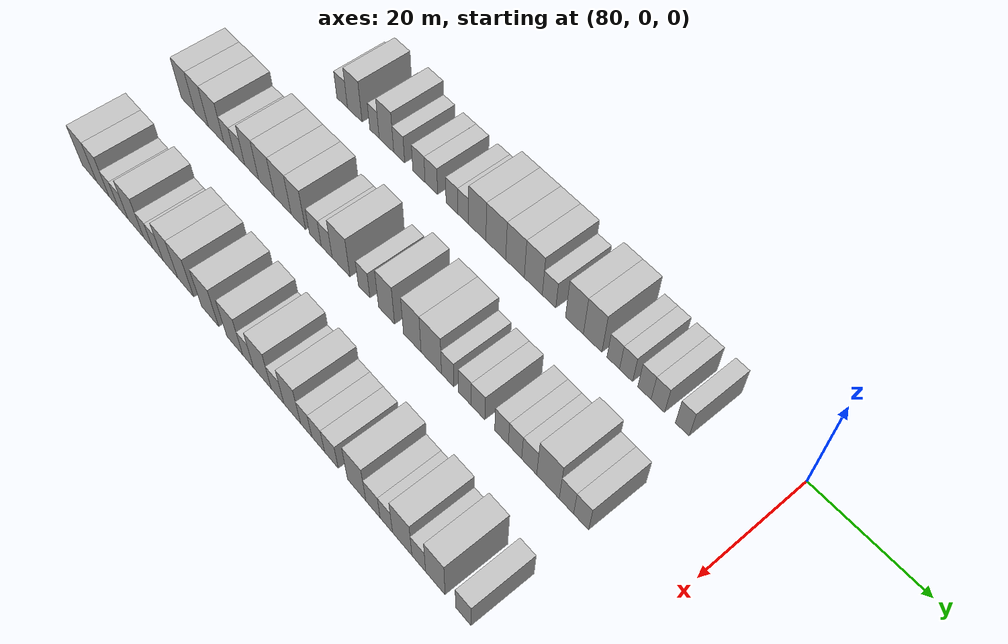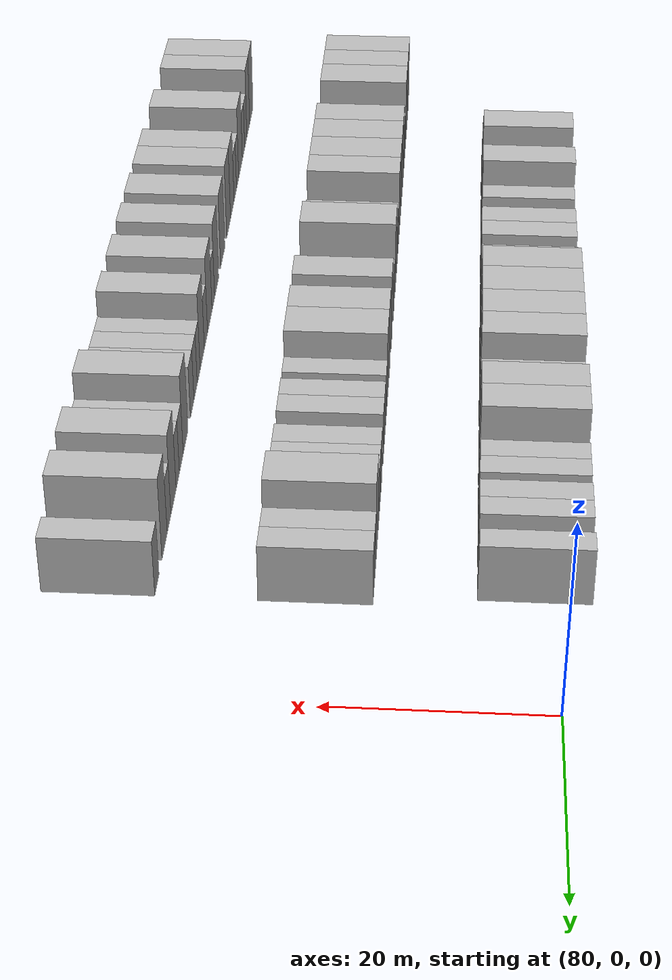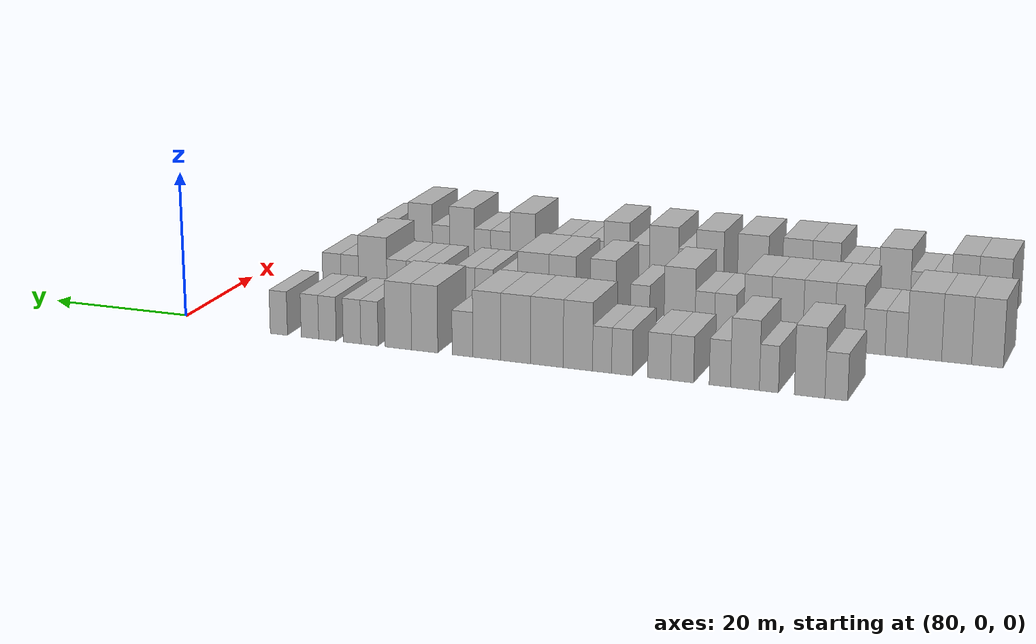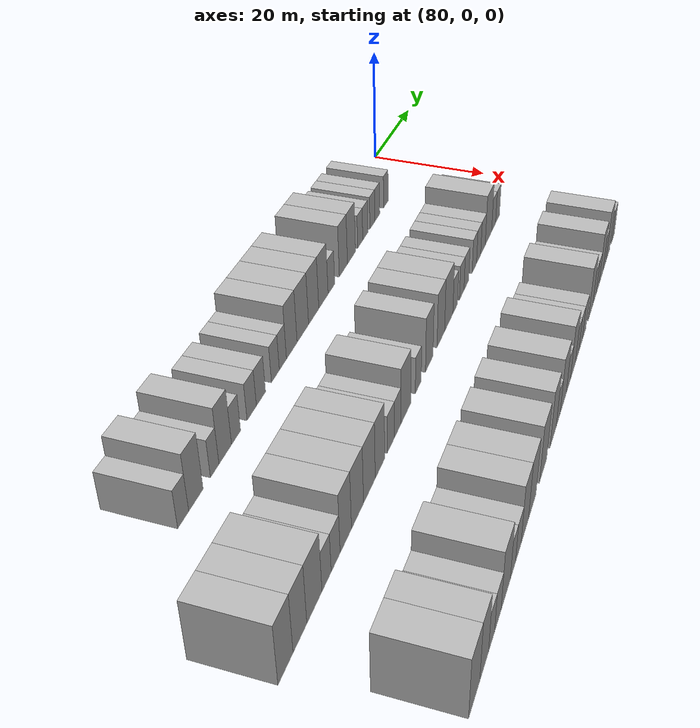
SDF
<sdf version="1.6">
 <world name="default">
  <model name="building_585">
   <static>1</static>
   <pose>82.0000 -90.4703 0 0.000000 0.000000 0.000000</pose>
   <link name="link">
    <pose>0 0 3.00 0 0 0</pose>
    <collision name="collision"><geometry><box><size>10.0000 2.8240 6.0000</size></box></geometry></collision>
    <visual name="visual">
     <cast_shadows>0</cast_shadows>
     <geometry><box><size>10.0000 2.8240 6.0000</size></box></geometry>
     <material>
      <script>
       <uri>model://HANNAS_wall/materials/scripts</uri>
       <uri>model://HANNAS_wall/materials/textures</uri>
       <name>vrc/HANNAS_wall</name>
      </script>
     </material>
    </visual>
   </link>
  </model>
  <model name="building_586">
   <static>1</static>
   <pose>82.0000 -87.1514 0 0.000000 0.000000 0.000000</pose>
   <link name="link">
    <pose>0 0 4.50 0 0 0</pose>
    <collision name="collision"><geometry><box><size>10.0000 3.8140 9.0000</size></box></geometry></collision>
    <visual name="visual">
     <cast_shadows>0</cast_shadows>
     <geometry><box><size>10.0000 3.8140 9.0000</size></box></geometry>
     <material>
      <script>
       <uri>model://HANNAS_wall/materials/scripts</uri>
       <uri>model://HANNAS_wall/materials/textures</uri>
       <name>vrc/HANNAS_wall</name>
      </script>
     </material>
    </visual>
   </link>
  </model>
  <model name="building_587">
   <static>1</static>
   <pose>82.0000 -82.0433 0 0.000000 0.000000 0.000000</pose>
   <link name="link">
    <pose>0 0 3.00 0 0 0</pose>
    <collision name="collision"><geometry><box><size>10.0000 2.4022 6.0000</size></box></geometry></collision>
    <visual name="visual">
     <cast_shadows>0</cast_shadows>
     <geometry><box><size>10.0000 2.4022 6.0000</size></box></geometry>
     <material>
      <script>
       <uri>model://HANNAS_wall/materials/scripts</uri>
       <uri>model://HANNAS_wall/materials/textures</uri>
       <name>vrc/HANNAS_wall</name>
      </script>
     </material>
    </visual>
   </link>
  </model>
  <model name="building_588">
   <static>1</static>
   <pose>82.0000 -79.0043 0 0.000000 0.000000 0.000000</pose>
   <link name="link">
    <pose>0 0 4.50 0 0 0</pose>
    <collision name="collision"><geometry><box><size>10.0000 3.6759 9.0000</size></box></geometry></collision>
    <visual name="visual">
     <cast_shadows>0</cast_shadows>
     <geometry><box><size>10.0000 3.6759 9.0000</size></box></geometry>
     <material>
      <script>
       <uri>model://HANNAS_wall/materials/scripts</uri>
       <uri>model://HANNAS_wall/materials/textures</uri>
       <name>vrc/HANNAS_wall</name>
      </script>
     </material>
    </visual>
   </link>
  </model>
  <model name="building_589">
   <static>1</static>
   <pose>82.0000 -75.8049 0 0.000000 0.000000 0.000000</pose>
   <link name="link">
    <pose>0 0 3.00 0 0 0</pose>
    <collision name="collision"><geometry><box><size>10.0000 2.7228 6.0000</size></box></geometry></collision>
    <visual name="visual">
     <cast_shadows>0</cast_shadows>
     <geometry><box><size>10.0000 2.7228 6.0000</size></box></geometry>
     <material>
      <script>
       <uri>model://HANNAS_wall/materials/scripts</uri>
       <uri>model://HANNAS_wall/materials/textures</uri>
       <name>vrc/HANNAS_wall</name>
      </script>
     </material>
    </visual>
   </link>
  </model>
  <model name="building_590">
   <static>1</static>
   <pose>82.0000 -70.9541 0 0.000000 0.000000 0.000000</pose>
   <link name="link">
    <pose>0 0 3.00 0 0 0</pose>
    <collision name="collision"><geometry><box><size>10.0000 2.9790 6.0000</size></box></geometry></collision>
    <visual name="visual">
     <cast_shadows>0</cast_shadows>
     <geometry><box><size>10.0000 2.9790 6.0000</size></box></geometry>
     <material>
      <script>
       <uri>model://HANNAS_wall/materials/scripts</uri>
       <uri>model://HANNAS_wall/materials/textures</uri>
       <name>vrc/HANNAS_wall</name>
      </script>
     </material>
    </visual>
   </link>
  </model>
  <model name="building_591">
   <static>1</static>
   <pose>82.0000 -67.9656 0 0.000000 0.000000 0.000000</pose>
   <link name="link">
    <pose>0 0 3.00 0 0 0</pose>
    <collision name="collision"><geometry><box><size>10.0000 2.9978 6.0000</size></box></geometry></collision>
    <visual name="visual">
     <cast_shadows>0</cast_shadows>
     <geometry><box><size>10.0000 2.9978 6.0000</size></box></geometry>
     <material>
      <script>
       <uri>model://HANNAS_wall/materials/scripts</uri>
       <uri>model://HANNAS_wall/materials/textures</uri>
       <name>vrc/HANNAS_wall</name>
      </script>
     </material>
    </visual>
   </link>
  </model>
  <model name="building_592">
   <static>1</static>
   <pose>82.0000 -63.0966 0 0.000000 0.000000 0.000000</pose>
   <link name="link">
    <pose>0 0 3.00 0 0 0</pose>
    <collision name="collision"><geometry><box><size>10.0000 2.7401 6.0000</size></box></geometry></collision>
    <visual name="visual">
     <cast_shadows>0</cast_shadows>
     <geometry><box><size>10.0000 2.7401 6.0000</size></box></geometry>
     <material>
      <script>
       <uri>model://HANNAS_wall/materials/scripts</uri>
       <uri>model://HANNAS_wall/materials/textures</uri>
       <name>vrc/HANNAS_wall</name>
      </script>
     </material>
    </visual>
   </link>
  </model>
  <model name="building_593">
   <static>1</static>
   <pose>82.0000 -60.4638 0 0.000000 0.000000 0.000000</pose>
   <link name="link">
    <pose>0 0 3.00 0 0 0</pose>
    <collision name="collision"><geometry><box><size>10.0000 2.5255 6.0000</size></box></geometry></collision>
    <visual name="visual">
     <cast_shadows>0</cast_shadows>
     <geometry><box><size>10.0000 2.5255 6.0000</size></box></geometry>
     <material>
      <script>
       <uri>model://HANNAS_wall/materials/scripts</uri>
       <uri>model://HANNAS_wall/materials/textures</uri>
       <name>vrc/HANNAS_wall</name>
      </script>
     </material>
    </visual>
   </link>
  </model>
  <model name="building_594">
   <static>1</static>
   <pose>82.0000 -57.2466 0 0.000000 0.000000 0.000000</pose>
   <link name="link">
    <pose>0 0 4.50 0 0 0</pose>
    <collision name="collision"><geometry><box><size>10.0000 3.9089 9.0000</size></box></geometry></collision>
    <visual name="visual">
     <cast_shadows>0</cast_shadows>
     <geometry><box><size>10.0000 3.9089 9.0000</size></box></geometry>
     <material>
      <script>
       <uri>model://HANNAS_wall/materials/scripts</uri>
       <uri>model://HANNAS_wall/materials/textures</uri>
       <name>vrc/HANNAS_wall</name>
      </script>
     </material>
    </visual>
   </link>
  </model>
  <model name="building_595">
   <static>1</static>
   <pose>82.0000 -53.0863 0 0.000000 0.000000 0.000000</pose>
   <link name="link">
    <pose>0 0 4.50 0 0 0</pose>
    <collision name="collision"><geometry><box><size>10.0000 4.4118 9.0000</size></box></geometry></collision>
    <visual name="visual">
     <cast_shadows>0</cast_shadows>
     <geometry><box><size>10.0000 4.4118 9.0000</size></box></geometry>
     <material>
      <script>
       <uri>model://HANNAS_wall/materials/scripts</uri>
       <uri>model://HANNAS_wall/materials/textures</uri>
       <name>vrc/HANNAS_wall</name>
      </script>
     </material>
    </visual>
   </link>
  </model>
  <model name="building_596">
   <static>1</static>
   <pose>82.0000 -48.8482 0 0.000000 0.000000 0.000000</pose>
   <link name="link">
    <pose>0 0 4.50 0 0 0</pose>
    <collision name="collision"><geometry><box><size>10.0000 4.0643 9.0000</size></box></geometry></collision>
    <visual name="visual">
     <cast_shadows>0</cast_shadows>
     <geometry><box><size>10.0000 4.0643 9.0000</size></box></geometry>
     <material>
      <script>
       <uri>model://HANNAS_wall/materials/scripts</uri>
       <uri>model://HANNAS_wall/materials/textures</uri>
       <name>vrc/HANNAS_wall</name>
      </script>
     </material>
    </visual>
   </link>
  </model>
  <model name="building_597">
   <static>1</static>
   <pose>82.0000 -44.8913 0 0.000000 0.000000 0.000000</pose>
   <link name="link">
    <pose>0 0 4.50 0 0 0</pose>
    <collision name="collision"><geometry><box><size>10.0000 3.8495 9.0000</size></box></geometry></collision>
    <visual name="visual">
     <cast_shadows>0</cast_shadows>
     <geometry><box><size>10.0000 3.8495 9.0000</size></box></geometry>
     <material>
      <script>
       <uri>model://HANNAS_wall/materials/scripts</uri>
       <uri>model://HANNAS_wall/materials/textures</uri>
       <name>vrc/HANNAS_wall</name>
      </script>
     </material>
    </visual>
   </link>
  </model>
  <model name="building_598">
   <static>1</static>
   <pose>82.0000 -41.5431 0 0.000000 0.000000 0.000000</pose>
   <link name="link">
    <pose>0 0 3.00 0 0 0</pose>
    <collision name="collision"><geometry><box><size>10.0000 2.8469 6.0000</size></box></geometry></collision>
    <visual name="visual">
     <cast_shadows>0</cast_shadows>
     <geometry><box><size>10.0000 2.8469 6.0000</size></box></geometry>
     <material>
      <script>
       <uri>model://HANNAS_wall/materials/scripts</uri>
       <uri>model://HANNAS_wall/materials/textures</uri>
       <name>vrc/HANNAS_wall</name>
      </script>
     </material>
    </visual>
   </link>
  </model>
  <model name="building_599">
   <static>1</static>
   <pose>82.0000 -36.2872 0 0.000000 0.000000 0.000000</pose>
   <link name="link">
    <pose>0 0 4.50 0 0 0</pose>
    <collision name="collision"><geometry><box><size>10.0000 3.6649 9.0000</size></box></geometry></collision>
    <visual name="visual">
     <cast_shadows>0</cast_shadows>
     <geometry><box><size>10.0000 3.6649 9.0000</size></box></geometry>
     <material>
      <script>
       <uri>model://HANNAS_wall/materials/scripts</uri>
       <uri>model://HANNAS_wall/materials/textures</uri>
       <name>vrc/HANNAS_wall</name>
      </script>
     </material>
    </visual>
   </link>
  </model>
  <model name="building_600">
   <static>1</static>
   <pose>82.0000 -32.5913 0 0.000000 0.000000 0.000000</pose>
   <link name="link">
    <pose>0 0 4.50 0 0 0</pose>
    <collision name="collision"><geometry><box><size>10.0000 3.7269 9.0000</size></box></geometry></collision>
    <visual name="visual">
     <cast_shadows>0</cast_shadows>
     <geometry><box><size>10.0000 3.7269 9.0000</size></box></geometry>
     <material>
      <script>
       <uri>model://HANNAS_wall/materials/scripts</uri>
       <uri>model://HANNAS_wall/materials/textures</uri>
       <name>vrc/HANNAS_wall</name>
      </script>
     </material>
    </visual>
   </link>
  </model>
  <model name="building_601">
   <static>1</static>
   <pose>82.0000 -28.4926 0 0.000000 0.000000 0.000000</pose>
   <link name="link">
    <pose>0 0 3.00 0 0 0</pose>
    <collision name="collision"><geometry><box><size>10.0000 2.4706 6.0000</size></box></geometry></collision>
    <visual name="visual">
     <cast_shadows>0</cast_shadows>
     <geometry><box><size>10.0000 2.4706 6.0000</size></box></geometry>
     <material>
      <script>
       <uri>model://HANNAS_wall/materials/scripts</uri>
       <uri>model://HANNAS_wall/materials/textures</uri>
       <name>vrc/HANNAS_wall</name>
      </script>
     </material>
    </visual>
   </link>
  </model>
  <model name="building_602">
   <static>1</static>
   <pose>82.0000 -25.9937 0 0.000000 0.000000 0.000000</pose>
   <link name="link">
    <pose>0 0 3.00 0 0 0</pose>
    <collision name="collision"><geometry><box><size>10.0000 2.5272 6.0000</size></box></geometry></collision>
    <visual name="visual">
     <cast_shadows>0</cast_shadows>
     <geometry><box><size>10.0000 2.5272 6.0000</size></box></geometry>
     <material>
      <script>
       <uri>model://HANNAS_wall/materials/scripts</uri>
       <uri>model://HANNAS_wall/materials/textures</uri>
       <name>vrc/HANNAS_wall</name>
      </script>
     </material>
    </visual>
   </link>
  </model>
  <model name="building_603">
   <static>1</static>
   <pose>82.0000 -22.4677 0 0.000000 0.000000 0.000000</pose>
   <link name="link">
    <pose>0 0 3.00 0 0 0</pose>
    <collision name="collision"><geometry><box><size>10.0000 2.5249 6.0000</size></box></geometry></collision>
    <visual name="visual">
     <cast_shadows>0</cast_shadows>
     <geometry><box><size>10.0000 2.5249 6.0000</size></box></geometry>
     <material>
      <script>
       <uri>model://HANNAS_wall/materials/scripts</uri>
       <uri>model://HANNAS_wall/materials/textures</uri>
       <name>vrc/HANNAS_wall</name>
      </script>
     </material>
    </visual>
   </link>
  </model>
  <model name="building_604">
   <static>1</static>
   <pose>82.0000 -19.9349 0 0.000000 0.000000 0.000000</pose>
   <link name="link">
    <pose>0 0 3.00 0 0 0</pose>
    <collision name="collision"><geometry><box><size>10.0000 2.5406 6.0000</size></box></geometry></collision>
    <visual name="visual">
     <cast_shadows>0</cast_shadows>
     <geometry><box><size>10.0000 2.5406 6.0000</size></box></geometry>
     <material>
      <script>
       <uri>model://HANNAS_wall/materials/scripts</uri>
       <uri>model://HANNAS_wall/materials/textures</uri>
       <name>vrc/HANNAS_wall</name>
      </script>
     </material>
    </visual>
   </link>
  </model>
  <model name="building_605">
   <static>1</static>
   <pose>82.0000 -15.4057 0 0.000000 0.000000 0.000000</pose>
   <link name="link">
    <pose>0 0 3.00 0 0 0</pose>
    <collision name="collision"><geometry><box><size>10.0000 2.5178 6.0000</size></box></geometry></collision>
    <visual name="visual">
     <cast_shadows>0</cast_shadows>
     <geometry><box><size>10.0000 2.5178 6.0000</size></box></geometry>
     <material>
      <script>
       <uri>model://HANNAS_wall/materials/scripts</uri>
       <uri>model://HANNAS_wall/materials/textures</uri>
       <name>vrc/HANNAS_wall</name>
      </script>
     </material>
    </visual>
   </link>
  </model>
  <model name="building_763">
   <static>1</static>
   <pose>101.0000 -105.6669 0 0.000000 0.000000 0.000000</pose>
   <link name="link">
    <pose>0 0 4.50 0 0 0</pose>
    <collision name="collision"><geometry><box><size>10.0000 3.9997 9.0000</size></box></geometry></collision>
    <visual name="visual">
     <cast_shadows>0</cast_shadows>
     <geometry><box><size>10.0000 3.9997 9.0000</size></box></geometry>
     <material>
      <script>
       <uri>model://HANNAS_wall/materials/scripts</uri>
       <uri>model://HANNAS_wall/materials/textures</uri>
       <name>vrc/HANNAS_wall</name>
      </script>
     </material>
    </visual>
   </link>
  </model>
  <model name="building_764">
   <static>1</static>
   <pose>101.0000 -101.7500 0 0.000000 0.000000 0.000000</pose>
   <link name="link">
    <pose>0 0 4.50 0 0 0</pose>
    <collision name="collision"><geometry><box><size>10.0000 3.8341 9.0000</size></box></geometry></collision>
    <visual name="visual">
     <cast_shadows>0</cast_shadows>
     <geometry><box><size>10.0000 3.8341 9.0000</size></box></geometry>
     <material>
      <script>
       <uri>model://HANNAS_wall/materials/scripts</uri>
       <uri>model://HANNAS_wall/materials/textures</uri>
       <name>vrc/HANNAS_wall</name>
      </script>
     </material>
    </visual>
   </link>
  </model>
  <model name="building_765">
   <static>1</static>
   <pose>101.0000 -97.6088 0 0.000000 0.000000 0.000000</pose>
   <link name="link">
    <pose>0 0 4.50 0 0 0</pose>
    <collision name="collision"><geometry><box><size>10.0000 4.4483 9.0000</size></box></geometry></collision>
    <visual name="visual">
     <cast_shadows>0</cast_shadows>
     <geometry><box><size>10.0000 4.4483 9.0000</size></box></geometry>
     <material>
      <script>
       <uri>model://HANNAS_wall/materials/scripts</uri>
       <uri>model://HANNAS_wall/materials/textures</uri>
       <name>vrc/HANNAS_wall</name>
      </script>
     </material>
    </visual>
   </link>
  </model>
  <model name="building_766">
   <static>1</static>
   <pose>101.0000 -93.9662 0 0.000000 0.000000 0.000000</pose>
   <link name="link">
    <pose>0 0 3.00 0 0 0</pose>
    <collision name="collision"><geometry><box><size>10.0000 2.8368 6.0000</size></box></geometry></collision>
    <visual name="visual">
     <cast_shadows>0</cast_shadows>
     <geometry><box><size>10.0000 2.8368 6.0000</size></box></geometry>
     <material>
      <script>
       <uri>model://HANNAS_wall/materials/scripts</uri>
       <uri>model://HANNAS_wall/materials/textures</uri>
       <name>vrc/HANNAS_wall</name>
      </script>
     </material>
    </visual>
   </link>
  </model>
  <model name="building_767">
   <static>1</static>
   <pose>101.0000 -91.1150 0 0.000000 0.000000 0.000000</pose>
   <link name="link">
    <pose>0 0 3.00 0 0 0</pose>
    <collision name="collision"><geometry><box><size>10.0000 2.8658 6.0000</size></box></geometry></collision>
    <visual name="visual">
     <cast_shadows>0</cast_shadows>
     <geometry><box><size>10.0000 2.8658 6.0000</size></box></geometry>
     <material>
      <script>
       <uri>model://HANNAS_wall/materials/scripts</uri>
       <uri>model://HANNAS_wall/materials/textures</uri>
       <name>vrc/HANNAS_wall</name>
      </script>
     </material>
    </visual>
   </link>
  </model>
  <model name="building_768">
   <static>1</static>
   <pose>101.0000 -87.7904 0 0.000000 0.000000 0.000000</pose>
   <link name="link">
    <pose>0 0 4.50 0 0 0</pose>
    <collision name="collision"><geometry><box><size>10.0000 3.7834 9.0000</size></box></geometry></collision>
    <visual name="visual">
     <cast_shadows>0</cast_shadows>
     <geometry><box><size>10.0000 3.7834 9.0000</size></box></geometry>
     <material>
      <script>
       <uri>model://HANNAS_wall/materials/scripts</uri>
       <uri>model://HANNAS_wall/materials/textures</uri>
       <name>vrc/HANNAS_wall</name>
      </script>
     </material>
    </visual>
   </link>
  </model>
  <model name="building_769">
   <static>1</static>
   <pose>101.0000 -83.7989 0 0.000000 0.000000 0.000000</pose>
   <link name="link">
    <pose>0 0 4.50 0 0 0</pose>
    <collision name="collision"><geometry><box><size>10.0000 4.1995 9.0000</size></box></geometry></collision>
    <visual name="visual">
     <cast_shadows>0</cast_shadows>
     <geometry><box><size>10.0000 4.1995 9.0000</size></box></geometry>
     <material>
      <script>
       <uri>model://HANNAS_wall/materials/scripts</uri>
       <uri>model://HANNAS_wall/materials/textures</uri>
       <name>vrc/HANNAS_wall</name>
      </script>
     </material>
    </visual>
   </link>
  </model>
  <model name="building_770">
   <static>1</static>
   <pose>101.0000 -79.5487 0 0.000000 0.000000 0.000000</pose>
   <link name="link">
    <pose>0 0 4.50 0 0 0</pose>
    <collision name="collision"><geometry><box><size>10.0000 4.3008 9.0000</size></box></geometry></collision>
    <visual name="visual">
     <cast_shadows>0</cast_shadows>
     <geometry><box><size>10.0000 4.3008 9.0000</size></box></geometry>
     <material>
      <script>
       <uri>model://HANNAS_wall/materials/scripts</uri>
       <uri>model://HANNAS_wall/materials/textures</uri>
       <name>vrc/HANNAS_wall</name>
      </script>
     </material>
    </visual>
   </link>
  </model>
  <model name="building_771">
   <static>1</static>
   <pose>101.0000 -75.5663 0 0.000000 0.000000 0.000000</pose>
   <link name="link">
    <pose>0 0 4.50 0 0 0</pose>
    <collision name="collision"><geometry><box><size>10.0000 3.6641 9.0000</size></box></geometry></collision>
    <visual name="visual">
     <cast_shadows>0</cast_shadows>
     <geometry><box><size>10.0000 3.6641 9.0000</size></box></geometry>
     <material>
      <script>
       <uri>model://HANNAS_wall/materials/scripts</uri>
       <uri>model://HANNAS_wall/materials/textures</uri>
       <name>vrc/HANNAS_wall</name>
      </script>
     </material>
    </visual>
   </link>
  </model>
  <model name="building_772">
   <static>1</static>
   <pose>101.0000 -71.2618 0 0.000000 0.000000 0.000000</pose>
   <link name="link">
    <pose>0 0 3.00 0 0 0</pose>
    <collision name="collision"><geometry><box><size>10.0000 2.9449 6.0000</size></box></geometry></collision>
    <visual name="visual">
     <cast_shadows>0</cast_shadows>
     <geometry><box><size>10.0000 2.9449 6.0000</size></box></geometry>
     <material>
      <script>
       <uri>model://HANNAS_wall/materials/scripts</uri>
       <uri>model://HANNAS_wall/materials/textures</uri>
       <name>vrc/HANNAS_wall</name>
      </script>
     </material>
    </visual>
   </link>
  </model>
  <model name="building_773">
   <static>1</static>
   <pose>101.0000 -68.4502 0 0.000000 0.000000 0.000000</pose>
   <link name="link">
    <pose>0 0 3.00 0 0 0</pose>
    <collision name="collision"><geometry><box><size>10.0000 2.6782 6.0000</size></box></geometry></collision>
    <visual name="visual">
     <cast_shadows>0</cast_shadows>
     <geometry><box><size>10.0000 2.6782 6.0000</size></box></geometry>
     <material>
      <script>
       <uri>model://HANNAS_wall/materials/scripts</uri>
       <uri>model://HANNAS_wall/materials/textures</uri>
       <name>vrc/HANNAS_wall</name>
      </script>
     </material>
    </visual>
   </link>
  </model>
  <model name="building_774">
   <static>1</static>
   <pose>101.0000 -64.9715 0 0.000000 0.000000 0.000000</pose>
   <link name="link">
    <pose>0 0 4.50 0 0 0</pose>
    <collision name="collision"><geometry><box><size>10.0000 4.2793 9.0000</size></box></geometry></collision>
    <visual name="visual">
     <cast_shadows>0</cast_shadows>
     <geometry><box><size>10.0000 4.2793 9.0000</size></box></geometry>
     <material>
      <script>
       <uri>model://HANNAS_wall/materials/scripts</uri>
       <uri>model://HANNAS_wall/materials/textures</uri>
       <name>vrc/HANNAS_wall</name>
      </script>
     </material>
    </visual>
   </link>
  </model>
  <model name="building_775">
   <static>1</static>
   <pose>101.0000 -59.4749 0 0.000000 0.000000 0.000000</pose>
   <link name="link">
    <pose>0 0 3.00 0 0 0</pose>
    <collision name="collision"><geometry><box><size>10.0000 2.7139 6.0000</size></box></geometry></collision>
    <visual name="visual">
     <cast_shadows>0</cast_shadows>
     <geometry><box><size>10.0000 2.7139 6.0000</size></box></geometry>
     <material>
      <script>
       <uri>model://HANNAS_wall/materials/scripts</uri>
       <uri>model://HANNAS_wall/materials/textures</uri>
       <name>vrc/HANNAS_wall</name>
      </script>
     </material>
    </visual>
   </link>
  </model>
  <model name="building_776">
   <static>1</static>
   <pose>101.0000 -54.2847 0 0.000000 0.000000 0.000000</pose>
   <link name="link">
    <pose>0 0 4.50 0 0 0</pose>
    <collision name="collision"><geometry><box><size>10.0000 3.6663 9.0000</size></box></geometry></collision>
    <visual name="visual">
     <cast_shadows>0</cast_shadows>
     <geometry><box><size>10.0000 3.6663 9.0000</size></box></geometry>
     <material>
      <script>
       <uri>model://HANNAS_wall/materials/scripts</uri>
       <uri>model://HANNAS_wall/materials/textures</uri>
       <name>vrc/HANNAS_wall</name>
      </script>
     </material>
    </visual>
   </link>
  </model>
  <model name="building_777">
   <static>1</static>
   <pose>101.0000 -48.5001 0 0.000000 0.000000 0.000000</pose>
   <link name="link">
    <pose>0 0 4.50 0 0 0</pose>
    <collision name="collision"><geometry><box><size>10.0000 3.9029 9.0000</size></box></geometry></collision>
    <visual name="visual">
     <cast_shadows>0</cast_shadows>
     <geometry><box><size>10.0000 3.9029 9.0000</size></box></geometry>
     <material>
      <script>
       <uri>model://HANNAS_wall/materials/scripts</uri>
       <uri>model://HANNAS_wall/materials/textures</uri>
       <name>vrc/HANNAS_wall</name>
      </script>
     </material>
    </visual>
   </link>
  </model>
  <model name="building_778">
   <static>1</static>
   <pose>101.0000 -44.3379 0 0.000000 0.000000 0.000000</pose>
   <link name="link">
    <pose>0 0 4.50 0 0 0</pose>
    <collision name="collision"><geometry><box><size>10.0000 4.4215 9.0000</size></box></geometry></collision>
    <visual name="visual">
     <cast_shadows>0</cast_shadows>
     <geometry><box><size>10.0000 4.4215 9.0000</size></box></geometry>
     <material>
      <script>
       <uri>model://HANNAS_wall/materials/scripts</uri>
       <uri>model://HANNAS_wall/materials/textures</uri>
       <name>vrc/HANNAS_wall</name>
      </script>
     </material>
    </visual>
   </link>
  </model>
  <model name="building_779">
   <static>1</static>
   <pose>101.0000 -40.8185 0 0.000000 0.000000 0.000000</pose>
   <link name="link">
    <pose>0 0 3.00 0 0 0</pose>
    <collision name="collision"><geometry><box><size>10.0000 2.6173 6.0000</size></box></geometry></collision>
    <visual name="visual">
     <cast_shadows>0</cast_shadows>
     <geometry><box><size>10.0000 2.6173 6.0000</size></box></geometry>
     <material>
      <script>
       <uri>model://HANNAS_wall/materials/scripts</uri>
       <uri>model://HANNAS_wall/materials/textures</uri>
       <name>vrc/HANNAS_wall</name>
      </script>
     </material>
    </visual>
   </link>
  </model>
  <model name="building_780">
   <static>1</static>
   <pose>101.0000 -37.1803 0 0.000000 0.000000 0.000000</pose>
   <link name="link">
    <pose>0 0 3.00 0 0 0</pose>
    <collision name="collision"><geometry><box><size>10.0000 2.6591 6.0000</size></box></geometry></collision>
    <visual name="visual">
     <cast_shadows>0</cast_shadows>
     <geometry><box><size>10.0000 2.6591 6.0000</size></box></geometry>
     <material>
      <script>
       <uri>model://HANNAS_wall/materials/scripts</uri>
       <uri>model://HANNAS_wall/materials/textures</uri>
       <name>vrc/HANNAS_wall</name>
      </script>
     </material>
    </visual>
   </link>
  </model>
  <model name="building_781">
   <static>1</static>
   <pose>101.0000 -34.4552 0 0.000000 0.000000 0.000000</pose>
   <link name="link">
    <pose>0 0 3.00 0 0 0</pose>
    <collision name="collision"><geometry><box><size>10.0000 2.7911 6.0000</size></box></geometry></collision>
    <visual name="visual">
     <cast_shadows>0</cast_shadows>
     <geometry><box><size>10.0000 2.7911 6.0000</size></box></geometry>
     <material>
      <script>
       <uri>model://HANNAS_wall/materials/scripts</uri>
       <uri>model://HANNAS_wall/materials/textures</uri>
       <name>vrc/HANNAS_wall</name>
      </script>
     </material>
    </visual>
   </link>
  </model>
  <model name="building_782">
   <static>1</static>
   <pose>101.0000 -29.6947 0 0.000000 0.000000 0.000000</pose>
   <link name="link">
    <pose>0 0 3.00 0 0 0</pose>
    <collision name="collision"><geometry><box><size>10.0000 2.7300 6.0000</size></box></geometry></collision>
    <visual name="visual">
     <cast_shadows>0</cast_shadows>
     <geometry><box><size>10.0000 2.7300 6.0000</size></box></geometry>
     <material>
      <script>
       <uri>model://HANNAS_wall/materials/scripts</uri>
       <uri>model://HANNAS_wall/materials/textures</uri>
       <name>vrc/HANNAS_wall</name>
      </script>
     </material>
    </visual>
   </link>
  </model>
  <model name="building_783">
   <static>1</static>
   <pose>101.0000 -27.0133 0 0.000000 0.000000 0.000000</pose>
   <link name="link">
    <pose>0 0 3.00 0 0 0</pose>
    <collision name="collision"><geometry><box><size>10.0000 2.6326 6.0000</size></box></geometry></collision>
    <visual name="visual">
     <cast_shadows>0</cast_shadows>
     <geometry><box><size>10.0000 2.6326 6.0000</size></box></geometry>
     <material>
      <script>
       <uri>model://HANNAS_wall/materials/scripts</uri>
       <uri>model://HANNAS_wall/materials/textures</uri>
       <name>vrc/HANNAS_wall</name>
      </script>
     </material>
    </visual>
   </link>
  </model>
  <model name="building_784">
   <static>1</static>
   <pose>101.0000 -24.2380 0 0.000000 0.000000 0.000000</pose>
   <link name="link">
    <pose>0 0 3.00 0 0 0</pose>
    <collision name="collision"><geometry><box><size>10.0000 2.9180 6.0000</size></box></geometry></collision>
    <visual name="visual">
     <cast_shadows>0</cast_shadows>
     <geometry><box><size>10.0000 2.9180 6.0000</size></box></geometry>
     <material>
      <script>
       <uri>model://HANNAS_wall/materials/scripts</uri>
       <uri>model://HANNAS_wall/materials/textures</uri>
       <name>vrc/HANNAS_wall</name>
      </script>
     </material>
    </visual>
   </link>
  </model>
  <model name="building_785">
   <static>1</static>
   <pose>101.0000 -20.6313 0 0.000000 0.000000 0.000000</pose>
   <link name="link">
    <pose>0 0 4.50 0 0 0</pose>
    <collision name="collision"><geometry><box><size>10.0000 4.2956 9.0000</size></box></geometry></collision>
    <visual name="visual">
     <cast_shadows>0</cast_shadows>
     <geometry><box><size>10.0000 4.2956 9.0000</size></box></geometry>
     <material>
      <script>
       <uri>model://HANNAS_wall/materials/scripts</uri>
       <uri>model://HANNAS_wall/materials/textures</uri>
       <name>vrc/HANNAS_wall</name>
      </script>
     </material>
    </visual>
   </link>
  </model>
  <model name="building_786">
   <static>1</static>
   <pose>101.0000 -17.1384 0 0.000000 0.000000 0.000000</pose>
   <link name="link">
    <pose>0 0 3.00 0 0 0</pose>
    <collision name="collision"><geometry><box><size>10.0000 2.6902 6.0000</size></box></geometry></collision>
    <visual name="visual">
     <cast_shadows>0</cast_shadows>
     <geometry><box><size>10.0000 2.6902 6.0000</size></box></geometry>
     <material>
      <script>
       <uri>model://HANNAS_wall/materials/scripts</uri>
       <uri>model://HANNAS_wall/materials/textures</uri>
       <name>vrc/HANNAS_wall</name>
      </script>
     </material>
    </visual>
   </link>
  </model>
  <model name="building_787">
   <static>1</static>
   <pose>101.0000 -14.4035 0 0.000000 0.000000 0.000000</pose>
   <link name="link">
    <pose>0 0 3.00 0 0 0</pose>
    <collision name="collision"><geometry><box><size>10.0000 2.7796 6.0000</size></box></geometry></collision>
    <visual name="visual">
     <cast_shadows>0</cast_shadows>
     <geometry><box><size>10.0000 2.7796 6.0000</size></box></geometry>
     <material>
      <script>
       <uri>model://HANNAS_wall/materials/scripts</uri>
       <uri>model://HANNAS_wall/materials/textures</uri>
       <name>vrc/HANNAS_wall</name>
      </script>
     </material>
    </visual>
   </link>
  </model>
  <model name="building_941">
   <static>1</static>
   <pose>120.0000 -103.3700 0 0.000000 0.000000 0.000000</pose>
   <link name="link">
    <pose>0 0 4.50 0 0 0</pose>
    <collision name="collision"><geometry><box><size>10.0000 4.3840 9.0000</size></box></geometry></collision>
    <visual name="visual">
     <cast_shadows>0</cast_shadows>
     <geometry><box><size>10.0000 4.3840 9.0000</size></box></geometry>
     <material>
      <script>
       <uri>model://HANNAS_wall/materials/scripts</uri>
       <uri>model://HANNAS_wall/materials/textures</uri>
       <name>vrc/HANNAS_wall</name>
      </script>
     </material>
    </visual>
   </link>
  </model>
  <model name="building_942">
   <static>1</static>
   <pose>120.0000 -99.3565 0 0.000000 0.000000 0.000000</pose>
   <link name="link">
    <pose>0 0 4.50 0 0 0</pose>
    <collision name="collision"><geometry><box><size>10.0000 3.6430 9.0000</size></box></geometry></collision>
    <visual name="visual">
     <cast_shadows>0</cast_shadows>
     <geometry><box><size>10.0000 3.6430 9.0000</size></box></geometry>
     <material>
      <script>
       <uri>model://HANNAS_wall/materials/scripts</uri>
       <uri>model://HANNAS_wall/materials/textures</uri>
       <name>vrc/HANNAS_wall</name>
      </script>
     </material>
    </visual>
   </link>
  </model>
  <model name="building_943">
   <static>1</static>
   <pose>120.0000 -96.2203 0 0.000000 0.000000 0.000000</pose>
   <link name="link">
    <pose>0 0 3.00 0 0 0</pose>
    <collision name="collision"><geometry><box><size>10.0000 2.6295 6.0000</size></box></geometry></collision>
    <visual name="visual">
     <cast_shadows>0</cast_shadows>
     <geometry><box><size>10.0000 2.6295 6.0000</size></box></geometry>
     <material>
      <script>
       <uri>model://HANNAS_wall/materials/scripts</uri>
       <uri>model://HANNAS_wall/materials/textures</uri>
       <name>vrc/HANNAS_wall</name>
      </script>
     </material>
    </visual>
   </link>
  </model>
  <model name="building_944">
   <static>1</static>
   <pose>120.0000 -93.4615 0 0.000000 0.000000 0.000000</pose>
   <link name="link">
    <pose>0 0 3.00 0 0 0</pose>
    <collision name="collision"><geometry><box><size>10.0000 2.8882 6.0000</size></box></geometry></collision>
    <visual name="visual">
     <cast_shadows>0</cast_shadows>
     <geometry><box><size>10.0000 2.8882 6.0000</size></box></geometry>
     <material>
      <script>
       <uri>model://HANNAS_wall/materials/scripts</uri>
       <uri>model://HANNAS_wall/materials/textures</uri>
       <name>vrc/HANNAS_wall</name>
      </script>
     </material>
    </visual>
   </link>
  </model>
  <model name="building_945">
   <static>1</static>
   <pose>120.0000 -89.8336 0 0.000000 0.000000 0.000000</pose>
   <link name="link">
    <pose>0 0 4.50 0 0 0</pose>
    <collision name="collision"><geometry><box><size>10.0000 4.3676 9.0000</size></box></geometry></collision>
    <visual name="visual">
     <cast_shadows>0</cast_shadows>
     <geometry><box><size>10.0000 4.3676 9.0000</size></box></geometry>
     <material>
      <script>
       <uri>model://HANNAS_wall/materials/scripts</uri>
       <uri>model://HANNAS_wall/materials/textures</uri>
       <name>vrc/HANNAS_wall</name>
      </script>
     </material>
    </visual>
   </link>
  </model>
  <model name="building_946">
   <static>1</static>
   <pose>120.0000 -86.3796 0 0.000000 0.000000 0.000000</pose>
   <link name="link">
    <pose>0 0 3.00 0 0 0</pose>
    <collision name="collision"><geometry><box><size>10.0000 2.5403 6.0000</size></box></geometry></collision>
    <visual name="visual">
     <cast_shadows>0</cast_shadows>
     <geometry><box><size>10.0000 2.5403 6.0000</size></box></geometry>
     <material>
      <script>
       <uri>model://HANNAS_wall/materials/scripts</uri>
       <uri>model://HANNAS_wall/materials/textures</uri>
       <name>vrc/HANNAS_wall</name>
      </script>
     </material>
    </visual>
   </link>
  </model>
  <model name="building_947">
   <static>1</static>
   <pose>120.0000 -83.6933 0 0.000000 0.000000 0.000000</pose>
   <link name="link">
    <pose>0 0 3.00 0 0 0</pose>
    <collision name="collision"><geometry><box><size>10.0000 2.8324 6.0000</size></box></geometry></collision>
    <visual name="visual">
     <cast_shadows>0</cast_shadows>
     <geometry><box><size>10.0000 2.8324 6.0000</size></box></geometry>
     <material>
      <script>
       <uri>model://HANNAS_wall/materials/scripts</uri>
       <uri>model://HANNAS_wall/materials/textures</uri>
       <name>vrc/HANNAS_wall</name>
      </script>
     </material>
    </visual>
   </link>
  </model>
  <model name="building_948">
   <static>1</static>
   <pose>120.0000 -80.3015 0 0.000000 0.000000 0.000000</pose>
   <link name="link">
    <pose>0 0 4.50 0 0 0</pose>
    <collision name="collision"><geometry><box><size>10.0000 3.9512 9.0000</size></box></geometry></collision>
    <visual name="visual">
     <cast_shadows>0</cast_shadows>
     <geometry><box><size>10.0000 3.9512 9.0000</size></box></geometry>
     <material>
      <script>
       <uri>model://HANNAS_wall/materials/scripts</uri>
       <uri>model://HANNAS_wall/materials/textures</uri>
       <name>vrc/HANNAS_wall</name>
      </script>
     </material>
    </visual>
   </link>
  </model>
  <model name="building_949">
   <static>1</static>
   <pose>120.0000 -76.2295 0 0.000000 0.000000 0.000000</pose>
   <link name="link">
    <pose>0 0 4.50 0 0 0</pose>
    <collision name="collision"><geometry><box><size>10.0000 4.1928 9.0000</size></box></geometry></collision>
    <visual name="visual">
     <cast_shadows>0</cast_shadows>
     <geometry><box><size>10.0000 4.1928 9.0000</size></box></geometry>
     <material>
      <script>
       <uri>model://HANNAS_wall/materials/scripts</uri>
       <uri>model://HANNAS_wall/materials/textures</uri>
       <name>vrc/HANNAS_wall</name>
      </script>
     </material>
    </visual>
   </link>
  </model>
  <model name="building_950">
   <static>1</static>
   <pose>120.0000 -69.9311 0 0.000000 0.000000 0.000000</pose>
   <link name="link">
    <pose>0 0 4.50 0 0 0</pose>
    <collision name="collision"><geometry><box><size>10.0000 4.4041 9.0000</size></box></geometry></collision>
    <visual name="visual">
     <cast_shadows>0</cast_shadows>
     <geometry><box><size>10.0000 4.4041 9.0000</size></box></geometry>
     <material>
      <script>
       <uri>model://HANNAS_wall/materials/scripts</uri>
       <uri>model://HANNAS_wall/materials/textures</uri>
       <name>vrc/HANNAS_wall</name>
      </script>
     </material>
    </visual>
   </link>
  </model>
  <model name="building_951">
   <static>1</static>
   <pose>120.0000 -63.7317 0 0.000000 0.000000 0.000000</pose>
   <link name="link">
    <pose>0 0 4.50 0 0 0</pose>
    <collision name="collision"><geometry><box><size>10.0000 3.9947 9.0000</size></box></geometry></collision>
    <visual name="visual">
     <cast_shadows>0</cast_shadows>
     <geometry><box><size>10.0000 3.9947 9.0000</size></box></geometry>
     <material>
      <script>
       <uri>model://HANNAS_wall/materials/scripts</uri>
       <uri>model://HANNAS_wall/materials/textures</uri>
       <name>vrc/HANNAS_wall</name>
      </script>
     </material>
    </visual>
   </link>
  </model>
  <model name="building_952">
   <static>1</static>
   <pose>120.0000 -60.4395 0 0.000000 0.000000 0.000000</pose>
   <link name="link">
    <pose>0 0 3.00 0 0 0</pose>
    <collision name="collision"><geometry><box><size>10.0000 2.5898 6.0000</size></box></geometry></collision>
    <visual name="visual">
     <cast_shadows>0</cast_shadows>
     <geometry><box><size>10.0000 2.5898 6.0000</size></box></geometry>
     <material>
      <script>
       <uri>model://HANNAS_wall/materials/scripts</uri>
       <uri>model://HANNAS_wall/materials/textures</uri>
       <name>vrc/HANNAS_wall</name>
      </script>
     </material>
    </visual>
   </link>
  </model>
  <model name="building_953">
   <static>1</static>
   <pose>120.0000 -57.0169 0 0.000000 0.000000 0.000000</pose>
   <link name="link">
    <pose>0 0 4.50 0 0 0</pose>
    <collision name="collision"><geometry><box><size>10.0000 4.2556 9.0000</size></box></geometry></collision>
    <visual name="visual">
     <cast_shadows>0</cast_shadows>
     <geometry><box><size>10.0000 4.2556 9.0000</size></box></geometry>
     <material>
      <script>
       <uri>model://HANNAS_wall/materials/scripts</uri>
       <uri>model://HANNAS_wall/materials/textures</uri>
       <name>vrc/HANNAS_wall</name>
      </script>
     </material>
    </visual>
   </link>
  </model>
  <model name="building_954">
   <static>1</static>
   <pose>120.0000 -53.4106 0 0.000000 0.000000 0.000000</pose>
   <link name="link">
    <pose>0 0 3.00 0 0 0</pose>
    <collision name="collision"><geometry><box><size>10.0000 2.9570 6.0000</size></box></geometry></collision>
    <visual name="visual">
     <cast_shadows>0</cast_shadows>
     <geometry><box><size>10.0000 2.9570 6.0000</size></box></geometry>
     <material>
      <script>
       <uri>model://HANNAS_wall/materials/scripts</uri>
       <uri>model://HANNAS_wall/materials/textures</uri>
       <name>vrc/HANNAS_wall</name>
      </script>
     </material>
    </visual>
   </link>
  </model>
  <model name="building_955">
   <static>1</static>
   <pose>120.0000 -50.0246 0 0.000000 0.000000 0.000000</pose>
   <link name="link">
    <pose>0 0 4.50 0 0 0</pose>
    <collision name="collision"><geometry><box><size>10.0000 3.8148 9.0000</size></box></geometry></collision>
    <visual name="visual">
     <cast_shadows>0</cast_shadows>
     <geometry><box><size>10.0000 3.8148 9.0000</size></box></geometry>
     <material>
      <script>
       <uri>model://HANNAS_wall/materials/scripts</uri>
       <uri>model://HANNAS_wall/materials/textures</uri>
       <name>vrc/HANNAS_wall</name>
      </script>
     </material>
    </visual>
   </link>
  </model>
  <model name="building_956">
   <static>1</static>
   <pose>120.0000 -46.8383 0 0.000000 0.000000 0.000000</pose>
   <link name="link">
    <pose>0 0 3.00 0 0 0</pose>
    <collision name="collision"><geometry><box><size>10.0000 2.5580 6.0000</size></box></geometry></collision>
    <visual name="visual">
     <cast_shadows>0</cast_shadows>
     <geometry><box><size>10.0000 2.5580 6.0000</size></box></geometry>
     <material>
      <script>
       <uri>model://HANNAS_wall/materials/scripts</uri>
       <uri>model://HANNAS_wall/materials/textures</uri>
       <name>vrc/HANNAS_wall</name>
      </script>
     </material>
    </visual>
   </link>
  </model>
  <model name="building_957">
   <static>1</static>
   <pose>120.0000 -44.1546 0 0.000000 0.000000 0.000000</pose>
   <link name="link">
    <pose>0 0 3.00 0 0 0</pose>
    <collision name="collision"><geometry><box><size>10.0000 2.8093 6.0000</size></box></geometry></collision>
    <visual name="visual">
     <cast_shadows>0</cast_shadows>
     <geometry><box><size>10.0000 2.8093 6.0000</size></box></geometry>
     <material>
      <script>
       <uri>model://HANNAS_wall/materials/scripts</uri>
       <uri>model://HANNAS_wall/materials/textures</uri>
       <name>vrc/HANNAS_wall</name>
      </script>
     </material>
    </visual>
   </link>
  </model>
  <model name="building_958">
   <static>1</static>
   <pose>120.0000 -41.2575 0 0.000000 0.000000 0.000000</pose>
   <link name="link">
    <pose>0 0 3.00 0 0 0</pose>
    <collision name="collision"><geometry><box><size>10.0000 2.9850 6.0000</size></box></geometry></collision>
    <visual name="visual">
     <cast_shadows>0</cast_shadows>
     <geometry><box><size>10.0000 2.9850 6.0000</size></box></geometry>
     <material>
      <script>
       <uri>model://HANNAS_wall/materials/scripts</uri>
       <uri>model://HANNAS_wall/materials/textures</uri>
       <name>vrc/HANNAS_wall</name>
      </script>
     </material>
    </visual>
   </link>
  </model>
  <model name="building_959">
   <static>1</static>
   <pose>120.0000 -35.8181 0 0.000000 0.000000 0.000000</pose>
   <link name="link">
    <pose>0 0 4.50 0 0 0</pose>
    <collision name="collision"><geometry><box><size>10.0000 3.8938 9.0000</size></box></geometry></collision>
    <visual name="visual">
     <cast_shadows>0</cast_shadows>
     <geometry><box><size>10.0000 3.8938 9.0000</size></box></geometry>
     <material>
      <script>
       <uri>model://HANNAS_wall/materials/scripts</uri>
       <uri>model://HANNAS_wall/materials/textures</uri>
       <name>vrc/HANNAS_wall</name>
      </script>
     </material>
    </visual>
   </link>
  </model>
  <model name="building_960">
   <static>1</static>
   <pose>120.0000 -32.3890 0 0.000000 0.000000 0.000000</pose>
   <link name="link">
    <pose>0 0 3.00 0 0 0</pose>
    <collision name="collision"><geometry><box><size>10.0000 2.9643 6.0000</size></box></geometry></collision>
    <visual name="visual">
     <cast_shadows>0</cast_shadows>
     <geometry><box><size>10.0000 2.9643 6.0000</size></box></geometry>
     <material>
      <script>
       <uri>model://HANNAS_wall/materials/scripts</uri>
       <uri>model://HANNAS_wall/materials/textures</uri>
       <name>vrc/HANNAS_wall</name>
      </script>
     </material>
    </visual>
   </link>
  </model>
  <model name="building_961">
   <static>1</static>
   <pose>120.0000 -29.6364 0 0.000000 0.000000 0.000000</pose>
   <link name="link">
    <pose>0 0 3.00 0 0 0</pose>
    <collision name="collision"><geometry><box><size>10.0000 2.5410 6.0000</size></box></geometry></collision>
    <visual name="visual">
     <cast_shadows>0</cast_shadows>
     <geometry><box><size>10.0000 2.5410 6.0000</size></box></geometry>
     <material>
      <script>
       <uri>model://HANNAS_wall/materials/scripts</uri>
       <uri>model://HANNAS_wall/materials/textures</uri>
       <name>vrc/HANNAS_wall</name>
      </script>
     </material>
    </visual>
   </link>
  </model>
  <model name="building_962">
   <static>1</static>
   <pose>120.0000 -26.4215 0 0.000000 0.000000 0.000000</pose>
   <link name="link">
    <pose>0 0 4.50 0 0 0</pose>
    <collision name="collision"><geometry><box><size>10.0000 3.8888 9.0000</size></box></geometry></collision>
    <visual name="visual">
     <cast_shadows>0</cast_shadows>
     <geometry><box><size>10.0000 3.8888 9.0000</size></box></geometry>
     <material>
      <script>
       <uri>model://HANNAS_wall/materials/scripts</uri>
       <uri>model://HANNAS_wall/materials/textures</uri>
       <name>vrc/HANNAS_wall</name>
      </script>
     </material>
    </visual>
   </link>
  </model>
  <model name="building_963">
   <static>1</static>
   <pose>120.0000 -23.1276 0 0.000000 0.000000 0.000000</pose>
   <link name="link">
    <pose>0 0 3.00 0 0 0</pose>
    <collision name="collision"><geometry><box><size>10.0000 2.6990 6.0000</size></box></geometry></collision>
    <visual name="visual">
     <cast_shadows>0</cast_shadows>
     <geometry><box><size>10.0000 2.6990 6.0000</size></box></geometry>
     <material>
      <script>
       <uri>model://HANNAS_wall/materials/scripts</uri>
       <uri>model://HANNAS_wall/materials/textures</uri>
       <name>vrc/HANNAS_wall</name>
      </script>
     </material>
    </visual>
   </link>
  </model>
  <model name="building_964">
   <static>1</static>
   <pose>120.0000 -19.9048 0 0.000000 0.000000 0.000000</pose>
   <link name="link">
    <pose>0 0 4.50 0 0 0</pose>
    <collision name="collision"><geometry><box><size>10.0000 3.7464 9.0000</size></box></geometry></collision>
    <visual name="visual">
     <cast_shadows>0</cast_shadows>
     <geometry><box><size>10.0000 3.7464 9.0000</size></box></geometry>
     <material>
      <script>
       <uri>model://HANNAS_wall/materials/scripts</uri>
       <uri>model://HANNAS_wall/materials/textures</uri>
       <name>vrc/HANNAS_wall</name>
      </script>
     </material>
    </visual>
   </link>
  </model>
  <model name="building_965">
   <static>1</static>
   <pose>120.0000 -14.5733 0 0.000000 0.000000 0.000000</pose>
   <link name="link">
    <pose>0 0 3.00 0 0 0</pose>
    <collision name="collision"><geometry><box><size>10.0000 2.9167 6.0000</size></box></geometry></collision>
    <visual name="visual">
     <cast_shadows>0</cast_shadows>
     <geometry><box><size>10.0000 2.9167 6.0000</size></box></geometry>
     <material>
      <script>
       <uri>model://HANNAS_wall/materials/scripts</uri>
       <uri>model://HANNAS_wall/materials/textures</uri>
       <name>vrc/HANNAS_wall</name>
      </script>
     </material>
    </visual>
   </link>
  </model>
 </world>
</sdf>
